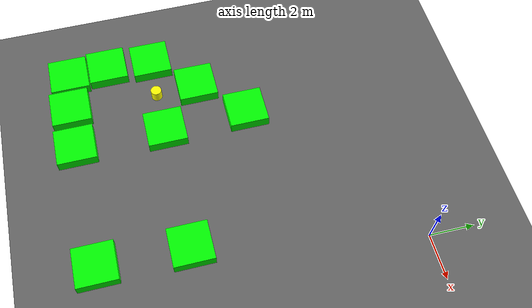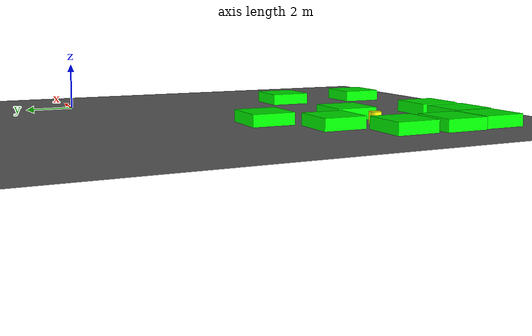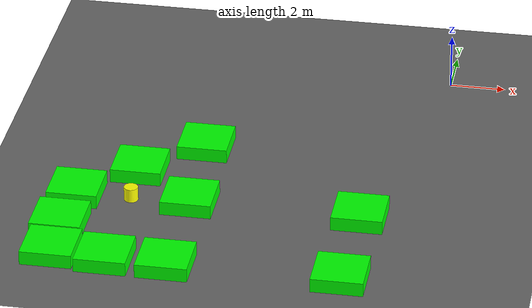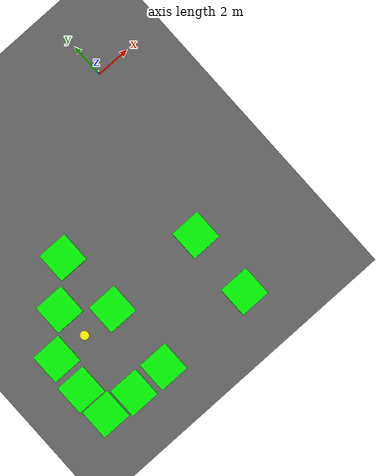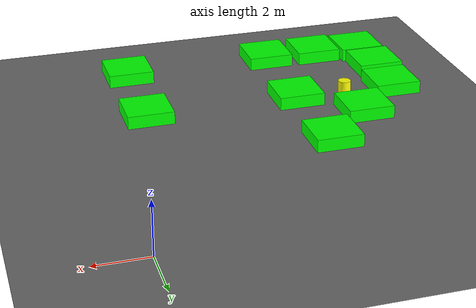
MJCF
<mujoco model="lvl5_deadend_obs10_dlong_depth3_seed2103">
    <compiler angle="degree" coordinate="local" inertiafromgeom="true"/>
    <option integrator="RK4" timestep="0.01"/>

    <asset>
        <texture builtin="gradient" height="100" rgb1="0.6 0.8 1" rgb2="0 0 0" type="skybox" width="100"/>
        <texture name="floor_texture" type="2d" builtin="checker" width="100" height="100" rgb1="0 0 0" rgb2="0.8 0.8 0.8"/>
        <material name="MatPlane" reflectance="0.5" shininess="1" specular="1" texrepeat="10 10" texture="floor_texture"/>
    </asset>

    <!-- Excluding the contact between the agent and the goal, and the agent and the floor -->
    <contact>
        <exclude body1="agent" body2="goal"/>
        <exclude body1 = "agent" body2 = "floor"/>
    </contact>

    <extension>
        <plugin plugin = "mujoco.pid">
            <instance name = "pid1">
                <config key="kp" value="2"/>
                <config key="ki" value="0"/>
                <config key="kd" value="55"/>
            </instance>
        </plugin>
    </extension>

    <worldbody>
        <light cutoff="100" diffuse="1 1 1" dir="-0 0 -1.3" directional="true" exponent="1" pos="0 0 1.3" specular=".1 .1 .1"/>
        <body name="floor" pos="0 0 0">
            <geom name="floor_geom" type="plane" size="20 20 0.1" material="MatPlane"/>
        </body>

                <body name="goal" pos="0.0000 0.0000 0">
            <geom name="goal_geom" type="plane" size="0.5 0.5 1" pos="0 0 0" rgba="1 0 0 1"/>
        </body>

                <body name="agent" pos="-10.0000 -10.0000 0.250">
            <joint name="j1" type="slide" axis ="1 0 0 "/>
            <joint name="j2" type="slide" axis ="0 1 0 "/>
            <geom name="agent_geom" type="cylinder" size="0.25 0.25 0.250" rgba="1 1 0 1"/>
        </body>

        <body name="obstacle1" pos="-8.0713 -6.0988 0.250">  <geom name="obstacle1_geom" type="box" size="0.9000 0.9000 0.250" rgba="0 1 0 1"/></body>
        <body name="obstacle2" pos="-10.0759 -8.0722 0.250">  <geom name="obstacle2_geom" type="box" size="0.9000 0.9000 0.250" rgba="0 1 0 1"/></body>
        <body name="obstacle3" pos="-11.9571 -9.9560 0.250">  <geom name="obstacle3_geom" type="box" size="0.9000 0.9000 0.250" rgba="0 1 0 1"/></body>
        <body name="obstacle4" pos="-7.9245 -9.9526 0.250">  <geom name="obstacle4_geom" type="box" size="0.9000 0.9000 0.250" rgba="0 1 0 1"/></body>
        <body name="obstacle5" pos="-1.9249 -9.9739 0.250">  <geom name="obstacle5_geom" type="box" size="0.9000 0.9000 0.250" rgba="0 1 0 1"/></body>
        <body name="obstacle6" pos="-12.0744 -12.0654 0.250">  <geom name="obstacle6_geom" type="box" size="0.9000 0.9000 0.250" rgba="0 1 0 1"/></body>
        <body name="obstacle7" pos="-11.9621 -13.9241 0.250">  <geom name="obstacle7_geom" type="box" size="0.9000 0.9000 0.250" rgba="0 1 0 1"/></body>
        <body name="obstacle8" pos="-10.0615 -14.0700 0.250">  <geom name="obstacle8_geom" type="box" size="0.9000 0.9000 0.250" rgba="0 1 0 1"/></body>
        <body name="obstacle9" pos="-7.9516 -14.0928 0.250">  <geom name="obstacle9_geom" type="box" size="0.9000 0.9000 0.250" rgba="0 1 0 1"/></body>
        <body name="obstacle10" pos="-1.9942 -13.9824 0.250">  <geom name="obstacle10_geom" type="box" size="0.9000 0.9000 0.250" rgba="0 1 0 1"/></body>

    </worldbody>

    <sensor>
<!-- SENSORS -->

        <distance name="dist1" geom1="agent_geom" geom2="obstacle1_geom" cutoff="1.5"/>
        <distance name="dist2" geom1="agent_geom" geom2="obstacle2_geom" cutoff="1.5"/>
        <distance name="dist3" geom1="agent_geom" geom2="obstacle3_geom" cutoff="1.5"/>
        <distance name="dist4" geom1="agent_geom" geom2="obstacle4_geom" cutoff="1.5"/>
        <distance name="dist5" geom1="agent_geom" geom2="obstacle5_geom" cutoff="1.5"/>
        <distance name="dist6" geom1="agent_geom" geom2="obstacle6_geom" cutoff="1.5"/>
        <distance name="dist7" geom1="agent_geom" geom2="obstacle7_geom" cutoff="1.5"/>
        <distance name="dist8" geom1="agent_geom" geom2="obstacle8_geom" cutoff="1.5"/>
        <distance name="dist9" geom1="agent_geom" geom2="obstacle9_geom" cutoff="1.5"/>
        <distance name="dist10" geom1="agent_geom" geom2="obstacle10_geom" cutoff="1.5"/>
</sensor>

    <actuator>
        <plugin joint="j1" plugin="mujoco.pid" instance="pid1" />
        <plugin joint="j2" plugin="mujoco.pid" instance="pid1"/>
    </actuator>
</mujoco>
